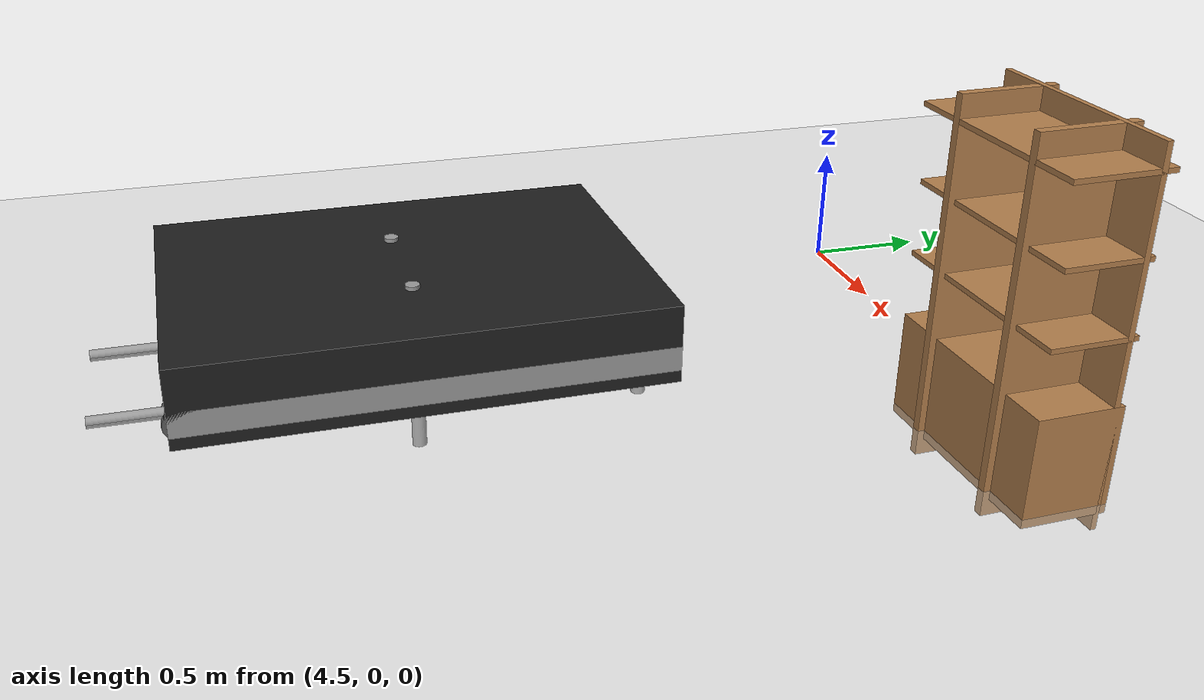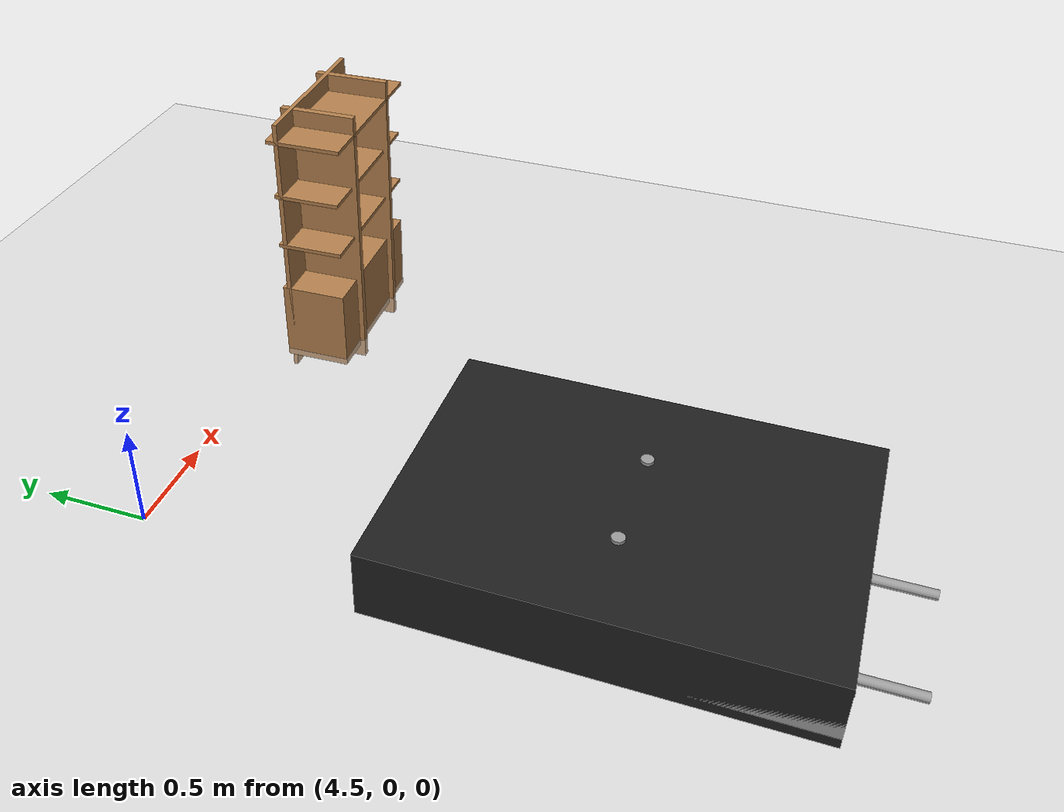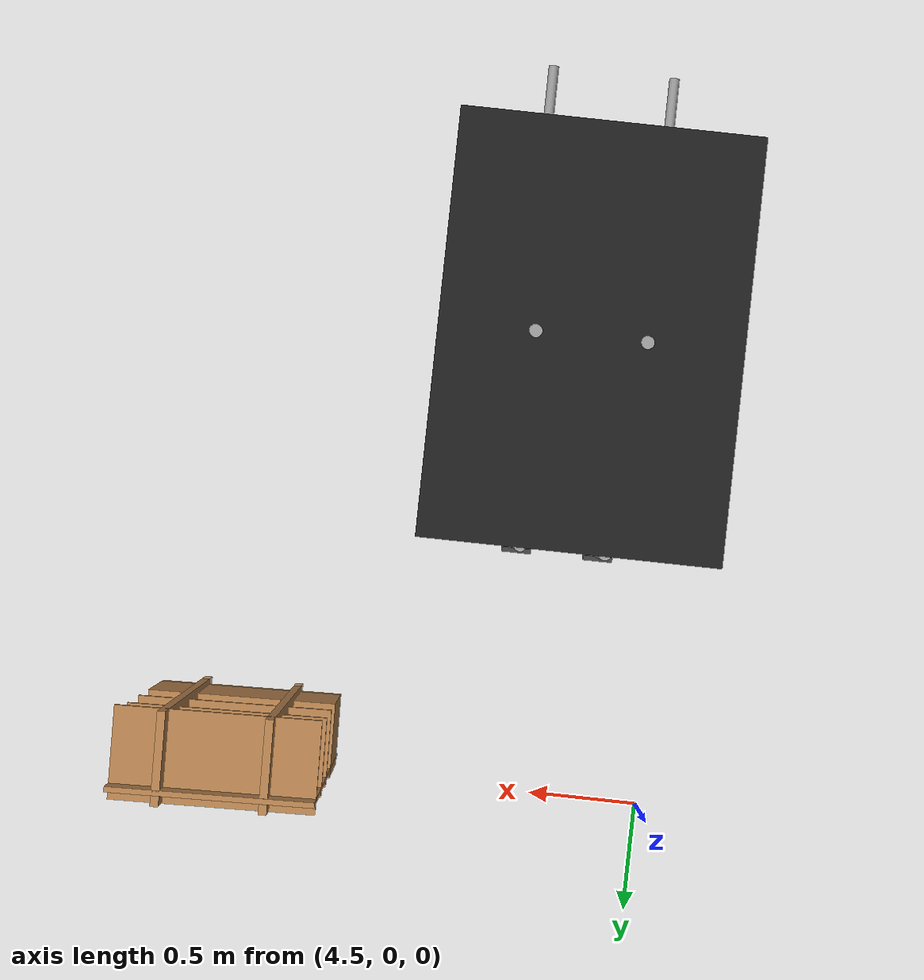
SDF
<sdf version="1.6">
 <world name="default">
  <model name="ground_plane">
   <static>1</static>
   <link name="link">
    <collision name="collision">
     <geometry><plane><normal>0 0 1</normal><size>100 100</size></plane></geometry>
     <surface><friction><ode><mu>100</mu><mu2>50</mu2></ode></friction></surface>
    </collision>
    <visual name="visual">
     <cast_shadows>0</cast_shadows>
     <geometry><plane><normal>0 0 1</normal><size>100 100</size></plane></geometry>
     <material>
      <script><uri>file://media/materials/scripts/gazebo.material</uri><name>Gazebo/Grey</name></script>
     </material>
    </visual>
   </link>
  </model>
  <model name="bed">
   <link name="link">
    <inertial>
     <mass>81.9561</mass>
     <inertia>
      <ixx>0.224659</ixx>
      <ixy>0</ixy>
      <ixz>0</ixz>
      <iyy>0.224659</iyy>
      <iyz>0</iyz>
      <izz>0.191285</izz>
     </inertia>
    </inertial>
    <velocity_decay><linear>0</linear><angular>0</angular></velocity_decay>
    <pose>0.216812 0 -0.064417 0 -0 0</pose>
    <visual name="cushion">
     <pose>-0.295 -0.975 0.2875 0 -0 0</pose>
     <geometry><box><size>1.38682 1.94849 0.328967</size></box></geometry>
     <material>
      <script>
       <uri>model://base_materials/cloth/scripts</uri>
       <uri>model://base_materials/cloth/textures</uri>
       <name>cloth/black</name>
      </script>
      <shader type="pixel"/>
     </material>
    </visual>
    <visual name="top_frame">
     <pose>-0.295 -0.975 0.225 0 -0 0</pose>
     <geometry><box><size>1.38682 1.94849 0.103082</size></box></geometry>
     <material>
      <script><uri>model://base_materials/color/scripts</uri><name>hsr_color/grey</name></script>
      <shader type="pixel"/>
     </material>
    </visual>
    <visual name="right_front_pole">
     <pose>-0.075 -0.0125 0.125 0 -0 0</pose>
     <geometry><cylinder><radius>0.0301087</radius><length>0.588678</length></cylinder></geometry>
     <material>
      <script><uri>model://base_materials/color/scripts</uri><name>hsr_color/grey</name></script>
      <shader type="pixel"/>
     </material>
    </visual>
    <visual name="right_front_caster">
     <pose>-0.075 -0.0125 0.02 0 1.57 0</pose>
     <geometry><cylinder><radius>0.0473354</radius><length>0.137443</length></cylinder></geometry>
     <material><script><name>Gazebo/Black</name><uri>__default__</uri></script><shader type="pixel"/></material>
    </visual>
    <visual name="right_back_pole">
     <pose>-0.46 -0.0125 0.125 0 -0 0</pose>
     <geometry><cylinder><radius>0.0301087</radius><length>0.588678</length></cylinder></geometry>
     <material>
      <script><uri>model://base_materials/color/scripts</uri><name>hsr_color/grey</name></script>
      <shader type="pixel"/>
     </material>
    </visual>
    <visual name="right_back_caster">
     <pose>-0.46 -0.0125 0.02 0 1.57 0</pose>
     <geometry><cylinder><radius>0.0473354</radius><length>0.137443</length></cylinder></geometry>
     <material><script><name>Gazebo/Black</name><uri>__default__</uri></script><shader type="pixel"/></material>
    </visual>
    <visual name="center_front_pole">
     <pose>-0.0425 -0.975 0.105 0 -0 0</pose>
     <geometry><cylinder><radius>0.0301087</radius><length>0.72719</length></cylinder></geometry>
     <material>
      <script><uri>model://base_materials/color/scripts</uri><name>hsr_color/grey</name></script>
      <shader type="pixel"/>
     </material>
    </visual>
    <visual name="center_back_pole">
     <pose>-0.5475 -0.975 0.105 0 -0 0</pose>
     <geometry><cylinder><radius>0.0301087</radius><length>0.72719</length></cylinder></geometry>
     <material>
      <script><uri>model://base_materials/color/scripts</uri><name>hsr_color/grey</name></script>
      <shader type="pixel"/>
     </material>
    </visual>
    <visual name="left_front_horizon_pole">
     <pose>-0.01 -1.825 0.06 1.57 -0 0</pose>
     <geometry><cylinder><radius>0.024087</radius><length>0.865702</length></cylinder></geometry>
     <material>
      <script><uri>model://base_materials/color/scripts</uri><name>hsr_color/grey</name></script>
      <shader type="pixel"/>
     </material>
    </visual>
    <visual name="left_front_vertical_pole">
     <pose>-0.01 -1.825 0.14 0 -0 0</pose>
     <geometry><cylinder><radius>0.024087</radius><length>0.484793</length></cylinder></geometry>
     <material>
      <script><uri>model://base_materials/color/scripts</uri><name>hsr_color/grey</name></script>
      <shader type="pixel"/>
     </material>
    </visual>
    <visual name="left_front_caster_r">
     <pose>-0.02 -1.725 0.025 0 1.57 0</pose>
     <geometry><cylinder><radius>0.0591692</radius><length>0.137443</length></cylinder></geometry>
     <material><script><name>Gazebo/Black</name><uri>__default__</uri></script><shader type="pixel"/></material>
    </visual>
    <visual name="left_front_caster_l">
     <pose>-0.02 -1.925 0.025 0 1.57 0</pose>
     <geometry><cylinder><radius>0.0591692</radius><length>0.137443</length></cylinder></geometry>
     <material><script><name>Gazebo/Black</name><uri>__default__</uri></script><shader type="pixel"/></material>
    </visual>
    <visual name="left_back_horizon_pole">
     <pose>-0.58 -1.825 0.06 1.57 -0 0</pose>
     <geometry><cylinder><radius>0.024087</radius><length>0.865702</length></cylinder></geometry>
     <material>
      <script><uri>model://base_materials/color/scripts</uri><name>hsr_color/grey</name></script>
      <shader type="pixel"/>
     </material>
    </visual>
    <visual name="left_back_vertical_pole">
     <pose>-0.58 -1.825 0.14 0 -0 0</pose>
     <geometry><cylinder><radius>0.024087</radius><length>0.484793</length></cylinder></geometry>
     <material>
      <script><uri>model://base_materials/color/scripts</uri><name>hsr_color/grey</name></script>
      <shader type="pixel"/>
     </material>
    </visual>
    <visual name="left_back_caster_r">
     <pose>-0.57 -1.725 0.025 0 1.57 0</pose>
     <geometry><cylinder><radius>0.0591692</radius><length>0.137443</length></cylinder></geometry>
     <material><script><name>Gazebo/Black</name><uri>__default__</uri></script><shader type="pixel"/></material>
    </visual>
    <visual name="left_back_caster_l">
     <pose>-0.57 -1.925 0.025 0 1.57 0</pose>
     <geometry><cylinder><radius>0.0591692</radius><length>0.137443</length></cylinder></geometry>
     <material><script><name>Gazebo/Black</name><uri>__default__</uri></script><shader type="pixel"/></material>
    </visual>
    <collision name="collision_cushion">
     <pose>-0.295 -0.975 0.2875 0 -0 0</pose>
     <geometry><box><size>1.38682 1.94849 0.328967</size></box></geometry>
     <surface>
      <friction>
       <ode><mu>1</mu><mu2>1</mu2><fdir1>0 0 0</fdir1><slip1>0</slip1><slip2>0</slip2></ode>
       <torsional>
        <coefficient>1</coefficient>
        <patch_radius>0</patch_radius>
        <surface_radius>0</surface_radius>
        <use_patch_radius>1</use_patch_radius>
        <ode><slip>0</slip></ode>
       </torsional>
      </friction>
      <bounce><restitution_coefficient>0</restitution_coefficient><threshold>1e+06</threshold></bounce>
      <contact>
       <collide_without_contact>0</collide_without_contact>
       <collide_without_contact_bitmask>1</collide_without_contact_bitmask>
       <collide_bitmask>1</collide_bitmask>
       <ode>
        <soft_cfm>0</soft_cfm>
        <soft_erp>0.2</soft_erp>
        <kp>1e+13</kp>
        <kd>1</kd>
        <max_vel>0.01</max_vel>
        <min_depth>0</min_depth>
       </ode>
       <bullet>
        <split_impulse>1</split_impulse>
        <split_impulse_penetration_threshold>-0.01</split_impulse_penetration_threshold>
        <soft_cfm>0</soft_cfm>
        <soft_erp>0.2</soft_erp>
        <kp>1e+13</kp>
        <kd>1</kd>
       </bullet>
      </contact>
     </surface>
    </collision>
    <collision name="collision_top_frame">
     <pose>-0.295 -0.975 0.225 0 -0 0</pose>
     <geometry><box><size>1.38682 1.94849 0.103082</size></box></geometry>
     <surface>
      <friction>
       <ode><mu>1</mu><mu2>1</mu2><fdir1>0 0 0</fdir1><slip1>0</slip1><slip2>0</slip2></ode>
       <torsional>
        <coefficient>1</coefficient>
        <patch_radius>0</patch_radius>
        <surface_radius>0</surface_radius>
        <use_patch_radius>1</use_patch_radius>
        <ode><slip>0</slip></ode>
       </torsional>
      </friction>
      <bounce><restitution_coefficient>0</restitution_coefficient><threshold>1e+06</threshold></bounce>
      <contact>
       <collide_without_contact>0</collide_without_contact>
       <collide_without_contact_bitmask>1</collide_without_contact_bitmask>
       <collide_bitmask>1</collide_bitmask>
       <ode>
        <soft_cfm>0</soft_cfm>
        <soft_erp>0.2</soft_erp>
        <kp>1e+13</kp>
        <kd>1</kd>
        <max_vel>0.01</max_vel>
        <min_depth>0</min_depth>
       </ode>
       <bullet>
        <split_impulse>1</split_impulse>
        <split_impulse_penetration_threshold>-0.01</split_impulse_penetration_threshold>
        <soft_cfm>0</soft_cfm>
        <soft_erp>0.2</soft_erp>
        <kp>1e+13</kp>
        <kd>1</kd>
       </bullet>
      </contact>
     </surface>
    </collision>
    <collision name="collision_right_front_caster">
     <pose>-0.075 -0.0125 0.02 0 1.57 0</pose>
     <geometry><cylinder><radius>0.047335</radius><length>0.137443</length></cylinder></geometry>
     <surface>
      <friction>
       <ode><mu>1</mu><mu2>1</mu2><fdir1>0 0 0</fdir1><slip1>0</slip1><slip2>0</slip2></ode>
       <torsional>
        <coefficient>1</coefficient>
        <patch_radius>0</patch_radius>
        <surface_radius>0</surface_radius>
        <use_patch_radius>1</use_patch_radius>
        <ode><slip>0</slip></ode>
       </torsional>
      </friction>
      <bounce><restitution_coefficient>0</restitution_coefficient><threshold>1e+06</threshold></bounce>
      <contact>
       <collide_without_contact>0</collide_without_contact>
       <collide_without_contact_bitmask>1</collide_without_contact_bitmask>
       <collide_bitmask>1</collide_bitmask>
       <ode>
        <soft_cfm>0</soft_cfm>
        <soft_erp>0.2</soft_erp>
        <kp>1e+13</kp>
        <kd>1</kd>
        <max_vel>0.01</max_vel>
        <min_depth>0</min_depth>
       </ode>
       <bullet>
        <split_impulse>1</split_impulse>
        <split_impulse_penetration_threshold>-0.01</split_impulse_penetration_threshold>
        <soft_cfm>0</soft_cfm>
        <soft_erp>0.2</soft_erp>
        <kp>1e+13</kp>
        <kd>1</kd>
       </bullet>
      </contact>
     </surface>
    </collision>
    <collision name="collision_right_front_pole">
     <pose>-0.075 -0.0125 0.125 0 -0 0</pose>
     <geometry><cylinder><radius>0.030109</radius><length>0.588678</length></cylinder></geometry>
     <surface>
      <friction>
       <ode><mu>1</mu><mu2>1</mu2><fdir1>0 0 0</fdir1><slip1>0</slip1><slip2>0</slip2></ode>
       <torsional>
        <coefficient>1</coefficient>
        <patch_radius>0</patch_radius>
        <surface_radius>0</surface_radius>
        <use_patch_radius>1</use_patch_radius>
        <ode><slip>0</slip></ode>
       </torsional>
      </friction>
      <bounce><restitution_coefficient>0</restitution_coefficient><threshold>1e+06</threshold></bounce>
      <contact>
       <collide_without_contact>0</collide_without_contact>
       <collide_without_contact_bitmask>1</collide_without_contact_bitmask>
       <collide_bitmask>1</collide_bitmask>
       <ode>
        <soft_cfm>0</soft_cfm>
        <soft_erp>0.2</soft_erp>
        <kp>1e+13</kp>
        <kd>1</kd>
        <max_vel>0.01</max_vel>
        <min_depth>0</min_depth>
       </ode>
       <bullet>
        <split_impulse>1</split_impulse>
        <split_impulse_penetration_threshold>-0.01</split_impulse_penetration_threshold>
        <soft_cfm>0</soft_cfm>
        <soft_erp>0.2</soft_erp>
        <kp>1e+13</kp>
        <kd>1</kd>
       </bullet>
      </contact>
     </surface>
    </collision>
    <collision name="collision_right_back_pole">
     <pose>-0.46 -0.0125 0.125 0 -0 0</pose>
     <geometry><cylinder><radius>0.030109</radius><length>0.588678</length></cylinder></geometry>
     <surface>
      <friction>
       <ode><mu>1</mu><mu2>1</mu2><fdir1>0 0 0</fdir1><slip1>0</slip1><slip2>0</slip2></ode>
       <torsional>
        <coefficient>1</coefficient>
        <patch_radius>0</patch_radius>
        <surface_radius>0</surface_radius>
        <use_patch_radius>1</use_patch_radius>
        <ode><slip>0</slip></ode>
       </torsional>
      </friction>
      <bounce><restitution_coefficient>0</restitution_coefficient><threshold>1e+06</threshold></bounce>
      <contact>
       <collide_without_contact>0</collide_without_contact>
       <collide_without_contact_bitmask>1</collide_without_contact_bitmask>
       <collide_bitmask>1</collide_bitmask>
       <ode>
        <soft_cfm>0</soft_cfm>
        <soft_erp>0.2</soft_erp>
        <kp>1e+13</kp>
        <kd>1</kd>
        <max_vel>0.01</max_vel>
        <min_depth>0</min_depth>
       </ode>
       <bullet>
        <split_impulse>1</split_impulse>
        <split_impulse_penetration_threshold>-0.01</split_impulse_penetration_threshold>
        <soft_cfm>0</soft_cfm>
        <soft_erp>0.2</soft_erp>
        <kp>1e+13</kp>
        <kd>1</kd>
       </bullet>
      </contact>
     </surface>
    </collision>
    <collision name="collision_back_front_caster">
     <pose>-0.46 -0.0125 0.02 0 1.57 0</pose>
     <geometry><cylinder><radius>0.047335</radius><length>0.137443</length></cylinder></geometry>
     <surface>
      <friction>
       <ode><mu>1</mu><mu2>1</mu2><fdir1>0 0 0</fdir1><slip1>0</slip1><slip2>0</slip2></ode>
       <torsional>
        <coefficient>1</coefficient>
        <patch_radius>0</patch_radius>
        <surface_radius>0</surface_radius>
        <use_patch_radius>1</use_patch_radius>
        <ode><slip>0</slip></ode>
       </torsional>
      </friction>
      <bounce><restitution_coefficient>0</restitution_coefficient><threshold>1e+06</threshold></bounce>
      <contact>
       <collide_without_contact>0</collide_without_contact>
       <collide_without_contact_bitmask>1</collide_without_contact_bitmask>
       <collide_bitmask>1</collide_bitmask>
       <ode>
        <soft_cfm>0</soft_cfm>
        <soft_erp>0.2</soft_erp>
        <kp>1e+13</kp>
        <kd>1</kd>
        <max_vel>0.01</max_vel>
        <min_depth>0</min_depth>
       </ode>
       <bullet>
        <split_impulse>1</split_impulse>
        <split_impulse_penetration_threshold>-0.01</split_impulse_penetration_threshold>
        <soft_cfm>0</soft_cfm>
        <soft_erp>0.2</soft_erp>
        <kp>1e+13</kp>
        <kd>1</kd>
       </bullet>
      </contact>
     </surface>
    </collision>
    <collision name="collision_center_back_pole">
     <pose>-0.5475 -0.975 0.105 0 -0 0</pose>
     <geometry><cylinder><radius>0.030109</radius><length>0.588678</length></cylinder></geometry>
     <surface>
      <friction>
       <ode><mu>1</mu><mu2>1</mu2><fdir1>0 0 0</fdir1><slip1>0</slip1><slip2>0</slip2></ode>
       <torsional>
        <coefficient>1</coefficient>
        <patch_radius>0</patch_radius>
        <surface_radius>0</surface_radius>
        <use_patch_radius>1</use_patch_radius>
        <ode><slip>0</slip></ode>
       </torsional>
      </friction>
      <bounce><restitution_coefficient>0</restitution_coefficient><threshold>1e+06</threshold></bounce>
      <contact>
       <collide_without_contact>0</collide_without_contact>
       <collide_without_contact_bitmask>1</collide_without_contact_bitmask>
       <collide_bitmask>1</collide_bitmask>
       <ode>
        <soft_cfm>0</soft_cfm>
        <soft_erp>0.2</soft_erp>
        <kp>1e+13</kp>
        <kd>1</kd>
        <max_vel>0.01</max_vel>
        <min_depth>0</min_depth>
       </ode>
       <bullet>
        <split_impulse>1</split_impulse>
        <split_impulse_penetration_threshold>-0.01</split_impulse_penetration_threshold>
        <soft_cfm>0</soft_cfm>
        <soft_erp>0.2</soft_erp>
        <kp>1e+13</kp>
        <kd>1</kd>
       </bullet>
      </contact>
     </surface>
    </collision>
    <collision name="collision_center_front_pole">
     <pose>-0.0425 -0.975 0.105 0 -0 0</pose>
     <geometry><cylinder><radius>0.030109</radius><length>0.588678</length></cylinder></geometry>
     <surface>
      <friction>
       <ode><mu>1</mu><mu2>1</mu2><fdir1>0 0 0</fdir1><slip1>0</slip1><slip2>0</slip2></ode>
       <torsional>
        <coefficient>1</coefficient>
        <patch_radius>0</patch_radius>
        <surface_radius>0</surface_radius>
        <use_patch_radius>1</use_patch_radius>
        <ode><slip>0</slip></ode>
       </torsional>
      </friction>
      <bounce><restitution_coefficient>0</restitution_coefficient><threshold>1e+06</threshold></bounce>
      <contact>
       <collide_without_contact>0</collide_without_contact>
       <collide_without_contact_bitmask>1</collide_without_contact_bitmask>
       <collide_bitmask>1</collide_bitmask>
       <ode>
        <soft_cfm>0</soft_cfm>
        <soft_erp>0.2</soft_erp>
        <kp>1e+13</kp>
        <kd>1</kd>
        <max_vel>0.01</max_vel>
        <min_depth>0</min_depth>
       </ode>
       <bullet>
        <split_impulse>1</split_impulse>
        <split_impulse_penetration_threshold>-0.01</split_impulse_penetration_threshold>
        <soft_cfm>0</soft_cfm>
        <soft_erp>0.2</soft_erp>
        <kp>1e+13</kp>
        <kd>1</kd>
       </bullet>
      </contact>
     </surface>
    </collision>
    <collision name="collision_left_front_horizon_pole">
     <pose>-0.01 -1.825 0.06 1.57 -0 0</pose>
     <geometry><cylinder><radius>0.024087</radius><length>0.865702</length></cylinder></geometry>
     <surface>
      <friction>
       <ode><mu>1</mu><mu2>1</mu2><fdir1>0 0 0</fdir1><slip1>0</slip1><slip2>0</slip2></ode>
       <torsional>
        <coefficient>1</coefficient>
        <patch_radius>0</patch_radius>
        <surface_radius>0</surface_radius>
        <use_patch_radius>1</use_patch_radius>
        <ode><slip>0</slip></ode>
       </torsional>
      </friction>
      <bounce><restitution_coefficient>0</restitution_coefficient><threshold>1e+06</threshold></bounce>
      <contact>
       <collide_without_contact>0</collide_without_contact>
       <collide_without_contact_bitmask>1</collide_without_contact_bitmask>
       <collide_bitmask>1</collide_bitmask>
       <ode>
        <soft_cfm>0</soft_cfm>
        <soft_erp>0.2</soft_erp>
        <kp>1e+13</kp>
        <kd>1</kd>
        <max_vel>0.01</max_vel>
        <min_depth>0</min_depth>
       </ode>
       <bullet>
        <split_impulse>1</split_impulse>
        <split_impulse_penetration_threshold>-0.01</split_impulse_penetration_threshold>
        <soft_cfm>0</soft_cfm>
        <soft_erp>0.2</soft_erp>
        <kp>1e+13</kp>
        <kd>1</kd>
       </bullet>
      </contact>
     </surface>
    </collision>
    <collision name="collision_left_front_vertical_pole">
     <pose>-0.01 -1.825 0.14 0 -0 0</pose>
     <geometry><cylinder><radius>0.024087</radius><length>0.484793</length></cylinder></geometry>
     <surface>
      <friction>
       <ode><mu>1</mu><mu2>1</mu2><fdir1>0 0 0</fdir1><slip1>0</slip1><slip2>0</slip2></ode>
       <torsional>
        <coefficient>1</coefficient>
        <patch_radius>0</patch_radius>
        <surface_radius>0</surface_radius>
        <use_patch_radius>1</use_patch_radius>
        <ode><slip>0</slip></ode>
       </torsional>
      </friction>
      <bounce><restitution_coefficient>0</restitution_coefficient><threshold>1e+06</threshold></bounce>
      <contact>
       <collide_without_contact>0</collide_without_contact>
       <collide_without_contact_bitmask>1</collide_without_contact_bitmask>
       <collide_bitmask>1</collide_bitmask>
       <ode>
        <soft_cfm>0</soft_cfm>
        <soft_erp>0.2</soft_erp>
        <kp>1e+13</kp>
        <kd>1</kd>
        <max_vel>0.01</max_vel>
        <min_depth>0</min_depth>
       </ode>
       <bullet>
        <split_impulse>1</split_impulse>
        <split_impulse_penetration_threshold>-0.01</split_impulse_penetration_threshold>
        <soft_cfm>0</soft_cfm>
        <soft_erp>0.2</soft_erp>
        <kp>1e+13</kp>
        <kd>1</kd>
       </bullet>
      </contact>
     </surface>
    </collision>
    <collision name="collision_left_front_caster_r">
     <pose>-0.02 -1.725 0.025 0 1.57 0</pose>
     <geometry><cylinder><radius>0.059169</radius><length>0.137443</length></cylinder></geometry>
     <surface>
      <friction>
       <ode><mu>1</mu><mu2>1</mu2><fdir1>0 0 0</fdir1><slip1>0</slip1><slip2>0</slip2></ode>
       <torsional>
        <coefficient>1</coefficient>
        <patch_radius>0</patch_radius>
        <surface_radius>0</surface_radius>
        <use_patch_radius>1</use_patch_radius>
        <ode><slip>0</slip></ode>
       </torsional>
      </friction>
      <bounce><restitution_coefficient>0</restitution_coefficient><threshold>1e+06</threshold></bounce>
      <contact>
       <collide_without_contact>0</collide_without_contact>
       <collide_without_contact_bitmask>1</collide_without_contact_bitmask>
       <collide_bitmask>1</collide_bitmask>
       <ode>
        <soft_cfm>0</soft_cfm>
        <soft_erp>0.2</soft_erp>
        <kp>1e+13</kp>
        <kd>1</kd>
        <max_vel>0.01</max_vel>
        <min_depth>0</min_depth>
       </ode>
       <bullet>
        <split_impulse>1</split_impulse>
        <split_impulse_penetration_threshold>-0.01</split_impulse_penetration_threshold>
        <soft_cfm>0</soft_cfm>
        <soft_erp>0.2</soft_erp>
        <kp>1e+13</kp>
        <kd>1</kd>
       </bullet>
      </contact>
     </surface>
    </collision>
    <collision name="collision_left_front_caster_l">
     <pose>-0.02 -1.925 0.025 0 1.57 0</pose>
     <geometry><cylinder><radius>0.059169</radius><length>0.137443</length></cylinder></geometry>
     <surface>
      <friction>
       <ode><mu>1</mu><mu2>1</mu2><fdir1>0 0 0</fdir1><slip1>0</slip1><slip2>0</slip2></ode>
       <torsional>
        <coefficient>1</coefficient>
        <patch_radius>0</patch_radius>
        <surface_radius>0</surface_radius>
        <use_patch_radius>1</use_patch_radius>
        <ode><slip>0</slip></ode>
       </torsional>
      </friction>
      <bounce><restitution_coefficient>0</restitution_coefficient><threshold>1e+06</threshold></bounce>
      <contact>
       <collide_without_contact>0</collide_without_contact>
       <collide_without_contact_bitmask>1</collide_without_contact_bitmask>
       <collide_bitmask>1</collide_bitmask>
       <ode>
        <soft_cfm>0</soft_cfm>
        <soft_erp>0.2</soft_erp>
        <kp>1e+13</kp>
        <kd>1</kd>
        <max_vel>0.01</max_vel>
        <min_depth>0</min_depth>
       </ode>
       <bullet>
        <split_impulse>1</split_impulse>
        <split_impulse_penetration_threshold>-0.01</split_impulse_penetration_threshold>
        <soft_cfm>0</soft_cfm>
        <soft_erp>0.2</soft_erp>
        <kp>1e+13</kp>
        <kd>1</kd>
       </bullet>
      </contact>
     </surface>
    </collision>
    <collision name="collision_left_back_horizon_pole">
     <pose>-0.58 -1.825 0.06 1.57 -0 0</pose>
     <geometry><cylinder><radius>0.024087</radius><length>0.865702</length></cylinder></geometry>
     <surface>
      <friction>
       <ode><mu>1</mu><mu2>1</mu2><fdir1>0 0 0</fdir1><slip1>0</slip1><slip2>0</slip2></ode>
       <torsional>
        <coefficient>1</coefficient>
        <patch_radius>0</patch_radius>
        <surface_radius>0</surface_radius>
        <use_patch_radius>1</use_patch_radius>
        <ode><slip>0</slip></ode>
       </torsional>
      </friction>
      <bounce><restitution_coefficient>0</restitution_coefficient><threshold>1e+06</threshold></bounce>
      <contact>
       <collide_without_contact>0</collide_without_contact>
       <collide_without_contact_bitmask>1</collide_without_contact_bitmask>
       <collide_bitmask>1</collide_bitmask>
       <ode>
        <soft_cfm>0</soft_cfm>
        <soft_erp>0.2</soft_erp>
        <kp>1e+13</kp>
        <kd>1</kd>
        <max_vel>0.01</max_vel>
        <min_depth>0</min_depth>
       </ode>
       <bullet>
        <split_impulse>1</split_impulse>
        <split_impulse_penetration_threshold>-0.01</split_impulse_penetration_threshold>
        <soft_cfm>0</soft_cfm>
        <soft_erp>0.2</soft_erp>
        <kp>1e+13</kp>
        <kd>1</kd>
       </bullet>
      </contact>
     </surface>
    </collision>
    <collision name="collision_left_back_vertical_pole">
     <pose>-0.58 -1.825 0.14 0 -0 0</pose>
     <geometry><cylinder><radius>0.024087</radius><length>0.484793</length></cylinder></geometry>
     <surface>
      <friction>
       <ode><mu>1</mu><mu2>1</mu2><fdir1>0 0 0</fdir1><slip1>0</slip1><slip2>0</slip2></ode>
       <torsional>
        <coefficient>1</coefficient>
        <patch_radius>0</patch_radius>
        <surface_radius>0</surface_radius>
        <use_patch_radius>1</use_patch_radius>
        <ode><slip>0</slip></ode>
       </torsional>
      </friction>
      <bounce><restitution_coefficient>0</restitution_coefficient><threshold>1e+06</threshold></bounce>
      <contact>
       <collide_without_contact>0</collide_without_contact>
       <collide_without_contact_bitmask>1</collide_without_contact_bitmask>
       <collide_bitmask>1</collide_bitmask>
       <ode>
        <soft_cfm>0</soft_cfm>
        <soft_erp>0.2</soft_erp>
        <kp>1e+13</kp>
        <kd>1</kd>
        <max_vel>0.01</max_vel>
        <min_depth>0</min_depth>
       </ode>
       <bullet>
        <split_impulse>1</split_impulse>
        <split_impulse_penetration_threshold>-0.01</split_impulse_penetration_threshold>
        <soft_cfm>0</soft_cfm>
        <soft_erp>0.2</soft_erp>
        <kp>1e+13</kp>
        <kd>1</kd>
       </bullet>
      </contact>
     </surface>
    </collision>
    <collision name="collision_left_back_caster_l">
     <pose>-0.57 -1.925 0.025 0 1.57 0</pose>
     <geometry><cylinder><radius>0.059169</radius><length>0.137443</length></cylinder></geometry>
     <surface>
      <friction>
       <ode><mu>1</mu><mu2>1</mu2><fdir1>0 0 0</fdir1><slip1>0</slip1><slip2>0</slip2></ode>
       <torsional>
        <coefficient>1</coefficient>
        <patch_radius>0</patch_radius>
        <surface_radius>0</surface_radius>
        <use_patch_radius>1</use_patch_radius>
        <ode><slip>0</slip></ode>
       </torsional>
      </friction>
      <bounce><restitution_coefficient>0</restitution_coefficient><threshold>1e+06</threshold></bounce>
      <contact>
       <collide_without_contact>0</collide_without_contact>
       <collide_without_contact_bitmask>1</collide_without_contact_bitmask>
       <collide_bitmask>1</collide_bitmask>
       <ode>
        <soft_cfm>0</soft_cfm>
        <soft_erp>0.2</soft_erp>
        <kp>1e+13</kp>
        <kd>1</kd>
        <max_vel>0.01</max_vel>
        <min_depth>0</min_depth>
       </ode>
       <bullet>
        <split_impulse>1</split_impulse>
        <split_impulse_penetration_threshold>-0.01</split_impulse_penetration_threshold>
        <soft_cfm>0</soft_cfm>
        <soft_erp>0.2</soft_erp>
        <kp>1e+13</kp>
        <kd>1</kd>
       </bullet>
      </contact>
     </surface>
    </collision>
    <collision name="collision_left_back_caster_r">
     <pose>-0.57 -1.725 0.025 0 1.57 0</pose>
     <geometry><cylinder><radius>0.059169</radius><length>0.137443</length></cylinder></geometry>
     <surface>
      <friction>
       <ode><mu>1</mu><mu2>1</mu2><fdir1>0 0 0</fdir1><slip1>0</slip1><slip2>0</slip2></ode>
       <torsional>
        <coefficient>1</coefficient>
        <patch_radius>0</patch_radius>
        <surface_radius>0</surface_radius>
        <use_patch_radius>1</use_patch_radius>
        <ode><slip>0</slip></ode>
       </torsional>
      </friction>
      <bounce><restitution_coefficient>0</restitution_coefficient><threshold>1e+06</threshold></bounce>
      <contact>
       <collide_without_contact>0</collide_without_contact>
       <collide_without_contact_bitmask>1</collide_without_contact_bitmask>
       <collide_bitmask>1</collide_bitmask>
       <ode>
        <soft_cfm>0</soft_cfm>
        <soft_erp>0.2</soft_erp>
        <kp>1e+13</kp>
        <kd>1</kd>
        <max_vel>0.01</max_vel>
        <min_depth>0</min_depth>
       </ode>
       <bullet>
        <split_impulse>1</split_impulse>
        <split_impulse_penetration_threshold>-0.01</split_impulse_penetration_threshold>
        <soft_cfm>0</soft_cfm>
        <soft_erp>0.2</soft_erp>
        <kp>1e+13</kp>
        <kd>1</kd>
       </bullet>
      </contact>
     </surface>
    </collision>
   </link>
   <static>1</static>
   <pose>5.03596 -1.14611 0 0 -0 0</pose>
  </model>
  <model name="tvboard_0">
   <link name="link">
    <inertial>
     <mass>152.125</mass>
     <inertia><ixx>34.2336</ixx><ixy>0</ixy><ixz>0</ixz><iyy>25.2729</iyy><iyz>0</iyz><izz>8.97337</izz></inertia>
    </inertial>
    <velocity_decay><linear>0</linear><angular>0</angular></velocity_decay>
    <visual name="right_board">
     <pose>-0.145 0.4405 -0.61575 0 -0 0</pose>
     <geometry><box><size>0.381962 0.033905 1.41177</size></box></geometry>
     <material>
      <script><uri>model://base_materials/wood/scripts/wood.material</uri><name>base_materials/wood</name></script>
      <shader type="pixel"/>
     </material>
    </visual>
    <visual name="top_board">
     <pose>-0.145 0.2245 -0.0085 0 -0 0</pose>
     <geometry><box><size>0.381962 0.841035 0.019076</size></box></geometry>
     <material>
      <script><uri>model://base_materials/wood/scripts/wood.material</uri><name>base_materials/wood</name></script>
      <shader type="pixel"/>
     </material>
    </visual>
    <visual name="1st_shelf">
     <pose>-0.146 0.2245 -0.3035 0 -0 0</pose>
     <geometry><box><size>0.334546 0.841035 0.019076</size></box></geometry>
     <material>
      <script><uri>model://base_materials/wood/scripts/wood.material</uri><name>base_materials/wood</name></script>
      <shader type="pixel"/>
     </material>
    </visual>
    <visual name="2nd_shelf">
     <pose>-0.146 0.2245 -0.5845 0 -0 0</pose>
     <geometry><box><size>0.334546 0.841035 0.019076</size></box></geometry>
     <material>
      <script><uri>model://base_materials/wood/scripts/wood.material</uri><name>base_materials/wood</name></script>
      <shader type="pixel"/>
     </material>
    </visual>
    <visual name="bottom_board">
     <pose>-0.148 0.2245 -1.04775 0 -0 0</pose>
     <geometry><box><size>0.334546 0.841035 0.420347</size></box></geometry>
     <material>
      <script><uri>model://base_materials/wood/scripts/wood.material</uri><name>base_materials/wood</name></script>
      <shader type="pixel"/>
     </material>
    </visual>
    <visual name="back_board">
     <pose>-0.2815 0.2245 -0.61575 0 -0 0</pose>
     <geometry><box><size>0.022391 0.841035 1.41177</size></box></geometry>
     <material>
      <script><uri>model://base_materials/wood/scripts/wood.material</uri><name>base_materials/wood</name></script>
      <shader type="pixel"/>
     </material>
    </visual>
    <visual name="left_board">
     <pose>-0.145 0.0085 -0.6175 0 -0 0</pose>
     <geometry><box><size>0.381962 0.033905 1.41177</size></box></geometry>
     <material>
      <script><uri>model://base_materials/wood/scripts/wood.material</uri><name>base_materials/wood</name></script>
      <shader type="pixel"/>
     </material>
    </visual>
    <collision name="collision_left_board">
     <pose>-0.145 0.0085 -0.6175 0 -0 0</pose>
     <geometry><box><size>0.381962 0.033905 1.41177</size></box></geometry>
     <surface>
      <friction>
       <ode><mu>1</mu><mu2>1</mu2><fdir1>0 0 0</fdir1><slip1>0</slip1><slip2>0</slip2></ode>
       <torsional>
        <coefficient>1</coefficient>
        <patch_radius>0</patch_radius>
        <surface_radius>0</surface_radius>
        <use_patch_radius>1</use_patch_radius>
        <ode><slip>0</slip></ode>
       </torsional>
      </friction>
      <bounce><restitution_coefficient>0</restitution_coefficient><threshold>1e+06</threshold></bounce>
      <contact>
       <collide_without_contact>0</collide_without_contact>
       <collide_without_contact_bitmask>1</collide_without_contact_bitmask>
       <collide_bitmask>1</collide_bitmask>
       <ode>
        <soft_cfm>0</soft_cfm>
        <soft_erp>0.2</soft_erp>
        <kp>1e+13</kp>
        <kd>1</kd>
        <max_vel>0.01</max_vel>
        <min_depth>0</min_depth>
       </ode>
       <bullet>
        <split_impulse>1</split_impulse>
        <split_impulse_penetration_threshold>-0.01</split_impulse_penetration_threshold>
        <soft_cfm>0</soft_cfm>
        <soft_erp>0.2</soft_erp>
        <kp>1e+13</kp>
        <kd>1</kd>
       </bullet>
      </contact>
     </surface>
    </collision>
    <collision name="collision_right_board">
     <pose>-0.145 0.4405 -0.61575 0 -0 0</pose>
     <geometry><box><size>0.381962 0.033905 1.41177</size></box></geometry>
     <surface>
      <friction>
       <ode><mu>1</mu><mu2>1</mu2><fdir1>0 0 0</fdir1><slip1>0</slip1><slip2>0</slip2></ode>
       <torsional>
        <coefficient>1</coefficient>
        <patch_radius>0</patch_radius>
        <surface_radius>0</surface_radius>
        <use_patch_radius>1</use_patch_radius>
        <ode><slip>0</slip></ode>
       </torsional>
      </friction>
      <bounce><restitution_coefficient>0</restitution_coefficient><threshold>1e+06</threshold></bounce>
      <contact>
       <collide_without_contact>0</collide_without_contact>
       <collide_without_contact_bitmask>1</collide_without_contact_bitmask>
       <collide_bitmask>1</collide_bitmask>
       <ode>
        <soft_cfm>0</soft_cfm>
        <soft_erp>0.2</soft_erp>
        <kp>1e+13</kp>
        <kd>1</kd>
        <max_vel>0.01</max_vel>
        <min_depth>0</min_depth>
       </ode>
       <bullet>
        <split_impulse>1</split_impulse>
        <split_impulse_penetration_threshold>-0.01</split_impulse_penetration_threshold>
        <soft_cfm>0</soft_cfm>
        <soft_erp>0.2</soft_erp>
        <kp>1e+13</kp>
        <kd>1</kd>
       </bullet>
      </contact>
     </surface>
    </collision>
    <collision name="collision_top_board">
     <pose>-0.145 0.2245 -0.0085 0 -0 0</pose>
     <geometry><box><size>0.381962 0.841035 0.019076</size></box></geometry>
     <surface>
      <friction>
       <ode><mu>1</mu><mu2>1</mu2><fdir1>0 0 0</fdir1><slip1>0</slip1><slip2>0</slip2></ode>
       <torsional>
        <coefficient>1</coefficient>
        <patch_radius>0</patch_radius>
        <surface_radius>0</surface_radius>
        <use_patch_radius>1</use_patch_radius>
        <ode><slip>0</slip></ode>
       </torsional>
      </friction>
      <bounce><restitution_coefficient>0</restitution_coefficient><threshold>1e+06</threshold></bounce>
      <contact>
       <collide_without_contact>0</collide_without_contact>
       <collide_without_contact_bitmask>1</collide_without_contact_bitmask>
       <collide_bitmask>1</collide_bitmask>
       <ode>
        <soft_cfm>0</soft_cfm>
        <soft_erp>0.2</soft_erp>
        <kp>1e+13</kp>
        <kd>1</kd>
        <max_vel>0.01</max_vel>
        <min_depth>0</min_depth>
       </ode>
       <bullet>
        <split_impulse>1</split_impulse>
        <split_impulse_penetration_threshold>-0.01</split_impulse_penetration_threshold>
        <soft_cfm>0</soft_cfm>
        <soft_erp>0.2</soft_erp>
        <kp>1e+13</kp>
        <kd>1</kd>
       </bullet>
      </contact>
     </surface>
    </collision>
    <collision name="collision_1st_shelf">
     <pose>-0.146 0.2245 -0.3035 0 -0 0</pose>
     <geometry><box><size>0.334546 0.841035 0.019076</size></box></geometry>
     <surface>
      <friction>
       <ode><mu>1</mu><mu2>1</mu2><fdir1>0 0 0</fdir1><slip1>0</slip1><slip2>0</slip2></ode>
       <torsional>
        <coefficient>1</coefficient>
        <patch_radius>0</patch_radius>
        <surface_radius>0</surface_radius>
        <use_patch_radius>1</use_patch_radius>
        <ode><slip>0</slip></ode>
       </torsional>
      </friction>
      <bounce><restitution_coefficient>0</restitution_coefficient><threshold>1e+06</threshold></bounce>
      <contact>
       <collide_without_contact>0</collide_without_contact>
       <collide_without_contact_bitmask>1</collide_without_contact_bitmask>
       <collide_bitmask>1</collide_bitmask>
       <ode>
        <soft_cfm>0</soft_cfm>
        <soft_erp>0.2</soft_erp>
        <kp>1e+13</kp>
        <kd>1</kd>
        <max_vel>0.01</max_vel>
        <min_depth>0</min_depth>
       </ode>
       <bullet>
        <split_impulse>1</split_impulse>
        <split_impulse_penetration_threshold>-0.01</split_impulse_penetration_threshold>
        <soft_cfm>0</soft_cfm>
        <soft_erp>0.2</soft_erp>
        <kp>1e+13</kp>
        <kd>1</kd>
       </bullet>
      </contact>
     </surface>
    </collision>
    <collision name="collision_2nd_shelf">
     <pose>-0.146 0.2245 -0.5845 0 -0 0</pose>
     <geometry><box><size>0.334546 0.841035 0.019076</size></box></geometry>
     <surface>
      <friction>
       <ode><mu>1</mu><mu2>1</mu2><fdir1>0 0 0</fdir1><slip1>0</slip1><slip2>0</slip2></ode>
       <torsional>
        <coefficient>1</coefficient>
        <patch_radius>0</patch_radius>
        <surface_radius>0</surface_radius>
        <use_patch_radius>1</use_patch_radius>
        <ode><slip>0</slip></ode>
       </torsional>
      </friction>
      <bounce><restitution_coefficient>0</restitution_coefficient><threshold>1e+06</threshold></bounce>
      <contact>
       <collide_without_contact>0</collide_without_contact>
       <collide_without_contact_bitmask>1</collide_without_contact_bitmask>
       <collide_bitmask>1</collide_bitmask>
       <ode>
        <soft_cfm>0</soft_cfm>
        <soft_erp>0.2</soft_erp>
        <kp>1e+13</kp>
        <kd>1</kd>
        <max_vel>0.01</max_vel>
        <min_depth>0</min_depth>
       </ode>
       <bullet>
        <split_impulse>1</split_impulse>
        <split_impulse_penetration_threshold>-0.01</split_impulse_penetration_threshold>
        <soft_cfm>0</soft_cfm>
        <soft_erp>0.2</soft_erp>
        <kp>1e+13</kp>
        <kd>1</kd>
       </bullet>
      </contact>
     </surface>
    </collision>
    <collision name="collision_bottom_board">
     <pose>-0.148 0.2245 -1.04775 0 -0 0</pose>
     <geometry><box><size>0.334546 0.841035 0.420347</size></box></geometry>
     <surface>
      <friction>
       <ode><mu>1</mu><mu2>1</mu2><fdir1>0 0 0</fdir1><slip1>0</slip1><slip2>0</slip2></ode>
       <torsional>
        <coefficient>1</coefficient>
        <patch_radius>0</patch_radius>
        <surface_radius>0</surface_radius>
        <use_patch_radius>1</use_patch_radius>
        <ode><slip>0</slip></ode>
       </torsional>
      </friction>
      <bounce><restitution_coefficient>0</restitution_coefficient><threshold>1e+06</threshold></bounce>
      <contact>
       <collide_without_contact>0</collide_without_contact>
       <collide_without_contact_bitmask>1</collide_without_contact_bitmask>
       <collide_bitmask>1</collide_bitmask>
       <ode>
        <soft_cfm>0</soft_cfm>
        <soft_erp>0.2</soft_erp>
        <kp>1e+13</kp>
        <kd>1</kd>
        <max_vel>0.01</max_vel>
        <min_depth>0</min_depth>
       </ode>
       <bullet>
        <split_impulse>1</split_impulse>
        <split_impulse_penetration_threshold>-0.01</split_impulse_penetration_threshold>
        <soft_cfm>0</soft_cfm>
        <soft_erp>0.2</soft_erp>
        <kp>1e+13</kp>
        <kd>1</kd>
       </bullet>
      </contact>
     </surface>
    </collision>
    <collision name="collision_back_board">
     <pose>-0.2815 0.2245 -0.61575 0 -0 0</pose>
     <geometry><box><size>0.022391 0.841035 1.41177</size></box></geometry>
     <surface>
      <friction>
       <ode><mu>1</mu><mu2>1</mu2><fdir1>0 0 0</fdir1><slip1>0</slip1><slip2>0</slip2></ode>
       <torsional>
        <coefficient>1</coefficient>
        <patch_radius>0</patch_radius>
        <surface_radius>0</surface_radius>
        <use_patch_radius>1</use_patch_radius>
        <ode><slip>0</slip></ode>
       </torsional>
      </friction>
      <bounce><restitution_coefficient>0</restitution_coefficient><threshold>1e+06</threshold></bounce>
      <contact>
       <collide_without_contact>0</collide_without_contact>
       <collide_without_contact_bitmask>1</collide_without_contact_bitmask>
       <collide_bitmask>1</collide_bitmask>
       <ode>
        <soft_cfm>0</soft_cfm>
        <soft_erp>0.2</soft_erp>
        <kp>1e+13</kp>
        <kd>1</kd>
        <max_vel>0.01</max_vel>
        <min_depth>0</min_depth>
       </ode>
       <bullet>
        <split_impulse>1</split_impulse>
        <split_impulse_penetration_threshold>-0.01</split_impulse_penetration_threshold>
        <soft_cfm>0</soft_cfm>
        <soft_erp>0.2</soft_erp>
        <kp>1e+13</kp>
        <kd>1</kd>
       </bullet>
      </contact>
     </surface>
    </collision>
   </link>
   <static>1</static>
   <pose>6.12301 -0.336433 1.21853 0 0 -1.54284</pose>
  </model>
 </world>
</sdf>
